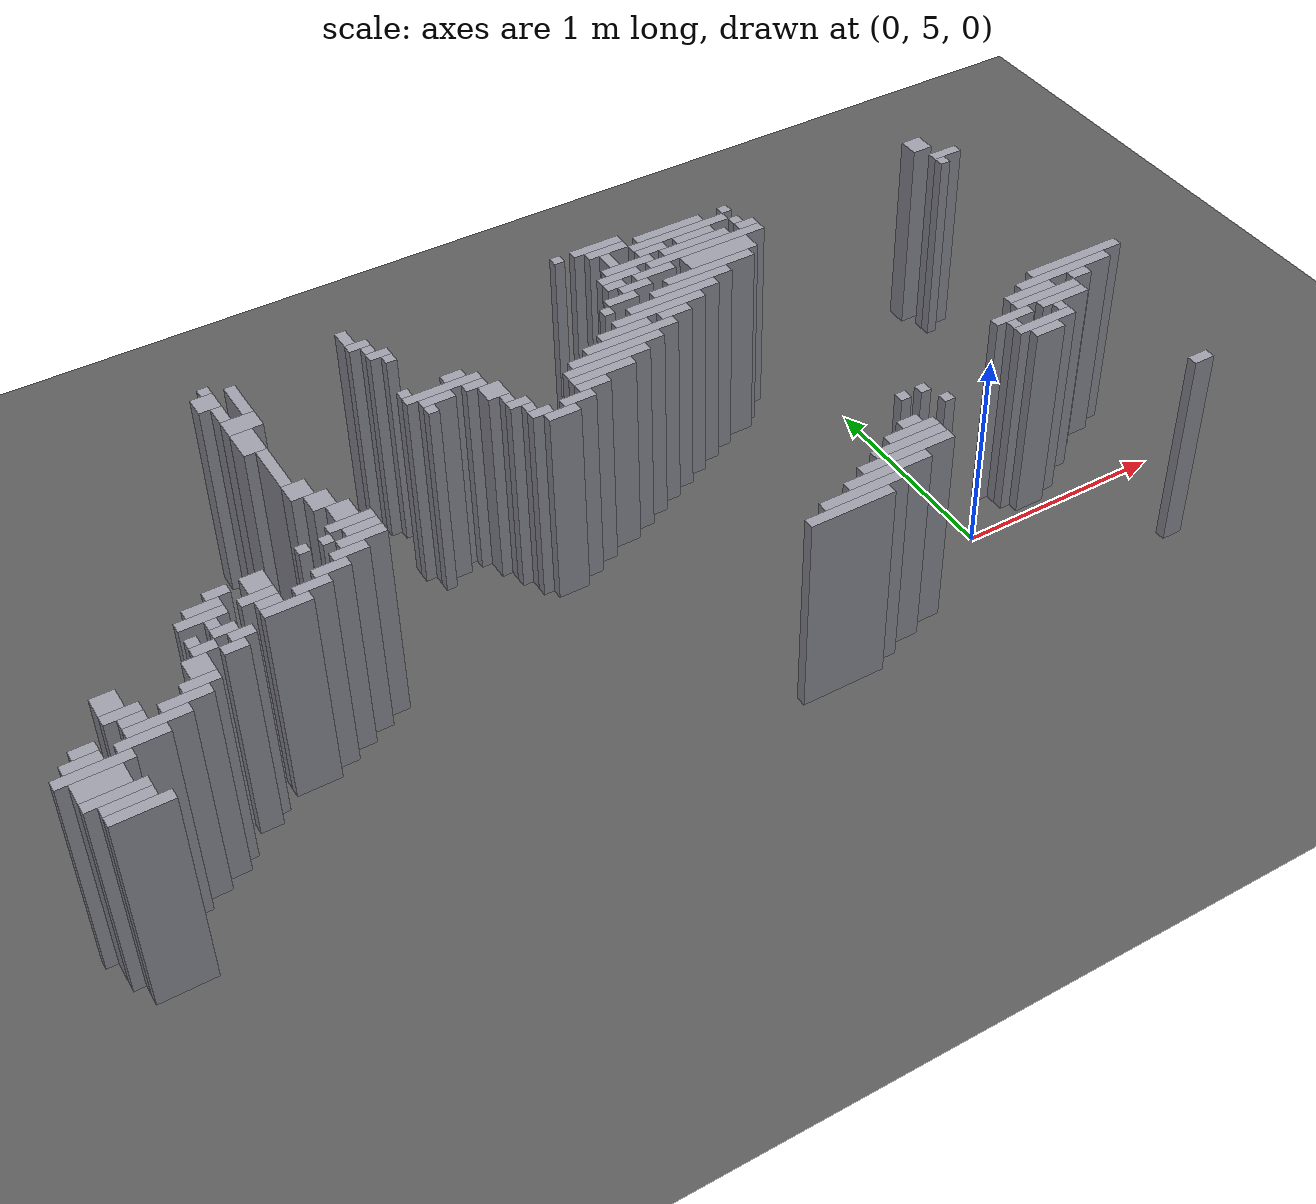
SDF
<sdf version="1.8">
 <world name="dimi">
  <model name="ground">
   <static>true</static>
   <link name="ground_link">
    <collision name="c"><geometry><plane><normal>0 0 1</normal><size>60 60</size></plane></geometry></collision>
    <visual name="v">
     <geometry><plane><normal>0 0 1</normal><size>60 60</size></plane></geometry>
     <material><ambient>0.3 0.3 0.3 1</ambient><diffuse>0.35 0.35 0.35 1</diffuse></material>
    </visual>
   </link>
  </model>
  <model name="walls">
   <static>true</static>
   <link name="wall_415">
    <pose>-2.2420 6.5950 0.5000 0 0 0</pose>
    <collision name="c"><geometry><box><size>0.0500 0.1000 1.0000</size></box></geometry></collision>
    <visual name="v">
     <geometry><box><size>0.0500 0.1000 1.0000</size></box></geometry>
     <material><ambient>0.5 0.5 0.55 1</ambient><diffuse>0.6 0.6 0.65 1</diffuse></material>
    </visual>
   </link>
   <link name="wall_416">
    <pose>-1.1920 6.6200 0.5000 0 0 0</pose>
    <collision name="c"><geometry><box><size>0.0500 0.0500 1.0000</size></box></geometry></collision>
    <visual name="v">
     <geometry><box><size>0.0500 0.0500 1.0000</size></box></geometry>
     <material><ambient>0.5 0.5 0.55 1</ambient><diffuse>0.6 0.6 0.65 1</diffuse></material>
    </visual>
   </link>
   <link name="wall_417">
    <pose>-0.9920 6.6200 0.5000 0 0 0</pose>
    <collision name="c"><geometry><box><size>0.2500 0.0500 1.0000</size></box></geometry></collision>
    <visual name="v">
     <geometry><box><size>0.2500 0.0500 1.0000</size></box></geometry>
     <material><ambient>0.5 0.5 0.55 1</ambient><diffuse>0.6 0.6 0.65 1</diffuse></material>
    </visual>
   </link>
   <link name="wall_425">
    <pose>-2.8920 6.5700 0.5000 0 0 0</pose>
    <collision name="c"><geometry><box><size>0.0500 0.0500 1.0000</size></box></geometry></collision>
    <visual name="v">
     <geometry><box><size>0.0500 0.0500 1.0000</size></box></geometry>
     <material><ambient>0.5 0.5 0.55 1</ambient><diffuse>0.6 0.6 0.65 1</diffuse></material>
    </visual>
   </link>
   <link name="wall_426">
    <pose>-0.9670 6.5700 0.5000 0 0 0</pose>
    <collision name="c"><geometry><box><size>0.2000 0.0500 1.0000</size></box></geometry></collision>
    <visual name="v">
     <geometry><box><size>0.2000 0.0500 1.0000</size></box></geometry>
     <material><ambient>0.5 0.5 0.55 1</ambient><diffuse>0.6 0.6 0.65 1</diffuse></material>
    </visual>
   </link>
   <link name="wall_427">
    <pose>-0.6420 6.5700 0.5000 0 0 0</pose>
    <collision name="c"><geometry><box><size>0.3500 0.0500 1.0000</size></box></geometry></collision>
    <visual name="v">
     <geometry><box><size>0.3500 0.0500 1.0000</size></box></geometry>
     <material><ambient>0.5 0.5 0.55 1</ambient><diffuse>0.6 0.6 0.65 1</diffuse></material>
    </visual>
   </link>
   <link name="wall_428">
    <pose>-0.3420 6.5700 0.5000 0 0 0</pose>
    <collision name="c"><geometry><box><size>0.0500 0.0500 1.0000</size></box></geometry></collision>
    <visual name="v">
     <geometry><box><size>0.0500 0.0500 1.0000</size></box></geometry>
     <material><ambient>0.5 0.5 0.55 1</ambient><diffuse>0.6 0.6 0.65 1</diffuse></material>
    </visual>
   </link>
   <link name="wall_429">
    <pose>0.7330 6.5450 0.5000 0 0 0</pose>
    <collision name="c"><geometry><box><size>0.1000 0.1000 1.0000</size></box></geometry></collision>
    <visual name="v">
     <geometry><box><size>0.1000 0.1000 1.0000</size></box></geometry>
     <material><ambient>0.5 0.5 0.55 1</ambient><diffuse>0.6 0.6 0.65 1</diffuse></material>
    </visual>
   </link>
   <link name="wall_434">
    <pose>-2.9170 6.4950 0.5000 0 0 0</pose>
    <collision name="c"><geometry><box><size>0.1000 0.1000 1.0000</size></box></geometry></collision>
    <visual name="v">
     <geometry><box><size>0.1000 0.1000 1.0000</size></box></geometry>
     <material><ambient>0.5 0.5 0.55 1</ambient><diffuse>0.6 0.6 0.65 1</diffuse></material>
    </visual>
   </link>
   <link name="wall_435">
    <pose>-2.7920 6.4450 0.5000 0 0 0</pose>
    <collision name="c"><geometry><box><size>0.0500 0.2000 1.0000</size></box></geometry></collision>
    <visual name="v">
     <geometry><box><size>0.0500 0.2000 1.0000</size></box></geometry>
     <material><ambient>0.5 0.5 0.55 1</ambient><diffuse>0.6 0.6 0.65 1</diffuse></material>
    </visual>
   </link>
   <link name="wall_436">
    <pose>-2.2170 6.5200 0.5000 0 0 0</pose>
    <collision name="c"><geometry><box><size>0.1000 0.0500 1.0000</size></box></geometry></collision>
    <visual name="v">
     <geometry><box><size>0.1000 0.0500 1.0000</size></box></geometry>
     <material><ambient>0.5 0.5 0.55 1</ambient><diffuse>0.6 0.6 0.65 1</diffuse></material>
    </visual>
   </link>
   <link name="wall_437">
    <pose>-0.9920 6.4950 0.5000 0 0 0</pose>
    <collision name="c"><geometry><box><size>0.0500 0.1000 1.0000</size></box></geometry></collision>
    <visual name="v">
     <geometry><box><size>0.0500 0.1000 1.0000</size></box></geometry>
     <material><ambient>0.5 0.5 0.55 1</ambient><diffuse>0.6 0.6 0.65 1</diffuse></material>
    </visual>
   </link>
   <link name="wall_438">
    <pose>-0.6170 6.5200 0.5000 0 0 0</pose>
    <collision name="c"><geometry><box><size>0.5000 0.0500 1.0000</size></box></geometry></collision>
    <visual name="v">
     <geometry><box><size>0.5000 0.0500 1.0000</size></box></geometry>
     <material><ambient>0.5 0.5 0.55 1</ambient><diffuse>0.6 0.6 0.65 1</diffuse></material>
    </visual>
   </link>
   <link name="wall_444">
    <pose>-2.1920 6.4700 0.5000 0 0 0</pose>
    <collision name="c"><geometry><box><size>0.0500 0.0500 1.0000</size></box></geometry></collision>
    <visual name="v">
     <geometry><box><size>0.0500 0.0500 1.0000</size></box></geometry>
     <material><ambient>0.5 0.5 0.55 1</ambient><diffuse>0.6 0.6 0.65 1</diffuse></material>
    </visual>
   </link>
   <link name="wall_445">
    <pose>-0.7920 6.4700 0.5000 0 0 0</pose>
    <collision name="c"><geometry><box><size>0.1500 0.0500 1.0000</size></box></geometry></collision>
    <visual name="v">
     <geometry><box><size>0.1500 0.0500 1.0000</size></box></geometry>
     <material><ambient>0.5 0.5 0.55 1</ambient><diffuse>0.6 0.6 0.65 1</diffuse></material>
    </visual>
   </link>
   <link name="wall_446">
    <pose>-0.5670 6.4700 0.5000 0 0 0</pose>
    <collision name="c"><geometry><box><size>0.2000 0.0500 1.0000</size></box></geometry></collision>
    <visual name="v">
     <geometry><box><size>0.2000 0.0500 1.0000</size></box></geometry>
     <material><ambient>0.5 0.5 0.55 1</ambient><diffuse>0.6 0.6 0.65 1</diffuse></material>
    </visual>
   </link>
   <link name="wall_447">
    <pose>-0.3420 6.4700 0.5000 0 0 0</pose>
    <collision name="c"><geometry><box><size>0.0500 0.0500 1.0000</size></box></geometry></collision>
    <visual name="v">
     <geometry><box><size>0.0500 0.0500 1.0000</size></box></geometry>
     <material><ambient>0.5 0.5 0.55 1</ambient><diffuse>0.6 0.6 0.65 1</diffuse></material>
    </visual>
   </link>
   <link name="wall_453">
    <pose>-2.8920 6.3950 0.5000 0 0 0</pose>
    <collision name="c"><geometry><box><size>0.0500 0.1000 1.0000</size></box></geometry></collision>
    <visual name="v">
     <geometry><box><size>0.0500 0.1000 1.0000</size></box></geometry>
     <material><ambient>0.5 0.5 0.55 1</ambient><diffuse>0.6 0.6 0.65 1</diffuse></material>
    </visual>
   </link>
   <link name="wall_454">
    <pose>-2.1670 6.4200 0.5000 0 0 0</pose>
    <collision name="c"><geometry><box><size>0.1000 0.0500 1.0000</size></box></geometry></collision>
    <visual name="v">
     <geometry><box><size>0.1000 0.0500 1.0000</size></box></geometry>
     <material><ambient>0.5 0.5 0.55 1</ambient><diffuse>0.6 0.6 0.65 1</diffuse></material>
    </visual>
   </link>
   <link name="wall_455">
    <pose>-0.9420 6.4200 0.5000 0 0 0</pose>
    <collision name="c"><geometry><box><size>0.2500 0.0500 1.0000</size></box></geometry></collision>
    <visual name="v">
     <geometry><box><size>0.2500 0.0500 1.0000</size></box></geometry>
     <material><ambient>0.5 0.5 0.55 1</ambient><diffuse>0.6 0.6 0.65 1</diffuse></material>
    </visual>
   </link>
   <link name="wall_456">
    <pose>-0.5920 6.4200 0.5000 0 0 0</pose>
    <collision name="c"><geometry><box><size>0.3500 0.0500 1.0000</size></box></geometry></collision>
    <visual name="v">
     <geometry><box><size>0.3500 0.0500 1.0000</size></box></geometry>
     <material><ambient>0.5 0.5 0.55 1</ambient><diffuse>0.6 0.6 0.65 1</diffuse></material>
    </visual>
   </link>
   <link name="wall_457">
    <pose>-0.3170 6.4200 0.5000 0 0 0</pose>
    <collision name="c"><geometry><box><size>0.1000 0.0500 1.0000</size></box></geometry></collision>
    <visual name="v">
     <geometry><box><size>0.1000 0.0500 1.0000</size></box></geometry>
     <material><ambient>0.5 0.5 0.55 1</ambient><diffuse>0.6 0.6 0.65 1</diffuse></material>
    </visual>
   </link>
   <link name="wall_458">
    <pose>0.8080 6.4200 0.5000 0 0 0</pose>
    <collision name="c"><geometry><box><size>0.1500 0.0500 1.0000</size></box></geometry></collision>
    <visual name="v">
     <geometry><box><size>0.1500 0.0500 1.0000</size></box></geometry>
     <material><ambient>0.5 0.5 0.55 1</ambient><diffuse>0.6 0.6 0.65 1</diffuse></material>
    </visual>
   </link>
   <link name="wall_464">
    <pose>-2.1420 6.3700 0.5000 0 0 0</pose>
    <collision name="c"><geometry><box><size>0.0500 0.0500 1.0000</size></box></geometry></collision>
    <visual name="v">
     <geometry><box><size>0.0500 0.0500 1.0000</size></box></geometry>
     <material><ambient>0.5 0.5 0.55 1</ambient><diffuse>0.6 0.6 0.65 1</diffuse></material>
    </visual>
   </link>
   <link name="wall_465">
    <pose>-1.0170 6.3700 0.5000 0 0 0</pose>
    <collision name="c"><geometry><box><size>0.2000 0.0500 1.0000</size></box></geometry></collision>
    <visual name="v">
     <geometry><box><size>0.2000 0.0500 1.0000</size></box></geometry>
     <material><ambient>0.5 0.5 0.55 1</ambient><diffuse>0.6 0.6 0.65 1</diffuse></material>
    </visual>
   </link>
   <link name="wall_466">
    <pose>-0.5670 6.3700 0.5000 0 0 0</pose>
    <collision name="c"><geometry><box><size>0.6000 0.0500 1.0000</size></box></geometry></collision>
    <visual name="v">
     <geometry><box><size>0.6000 0.0500 1.0000</size></box></geometry>
     <material><ambient>0.5 0.5 0.55 1</ambient><diffuse>0.6 0.6 0.65 1</diffuse></material>
    </visual>
   </link>
   <link name="wall_467">
    <pose>0.7580 6.3700 0.5000 0 0 0</pose>
    <collision name="c"><geometry><box><size>0.0500 0.0500 1.0000</size></box></geometry></collision>
    <visual name="v">
     <geometry><box><size>0.0500 0.0500 1.0000</size></box></geometry>
     <material><ambient>0.5 0.5 0.55 1</ambient><diffuse>0.6 0.6 0.65 1</diffuse></material>
    </visual>
   </link>
   <link name="wall_472">
    <pose>-2.8420 6.2950 0.5000 0 0 0</pose>
    <collision name="c"><geometry><box><size>0.1500 0.1000 1.0000</size></box></geometry></collision>
    <visual name="v">
     <geometry><box><size>0.1500 0.1000 1.0000</size></box></geometry>
     <material><ambient>0.5 0.5 0.55 1</ambient><diffuse>0.6 0.6 0.65 1</diffuse></material>
    </visual>
   </link>
   <link name="wall_473">
    <pose>-1.0670 6.3200 0.5000 0 0 0</pose>
    <collision name="c"><geometry><box><size>0.1000 0.0500 1.0000</size></box></geometry></collision>
    <visual name="v">
     <geometry><box><size>0.1000 0.0500 1.0000</size></box></geometry>
     <material><ambient>0.5 0.5 0.55 1</ambient><diffuse>0.6 0.6 0.65 1</diffuse></material>
    </visual>
   </link>
   <link name="wall_474">
    <pose>-0.8670 6.3200 0.5000 0 0 0</pose>
    <collision name="c"><geometry><box><size>0.2000 0.0500 1.0000</size></box></geometry></collision>
    <visual name="v">
     <geometry><box><size>0.2000 0.0500 1.0000</size></box></geometry>
     <material><ambient>0.5 0.5 0.55 1</ambient><diffuse>0.6 0.6 0.65 1</diffuse></material>
    </visual>
   </link>
   <link name="wall_475">
    <pose>-0.5420 6.2950 0.5000 0 0 0</pose>
    <collision name="c"><geometry><box><size>0.3500 0.1000 1.0000</size></box></geometry></collision>
    <visual name="v">
     <geometry><box><size>0.3500 0.1000 1.0000</size></box></geometry>
     <material><ambient>0.5 0.5 0.55 1</ambient><diffuse>0.6 0.6 0.65 1</diffuse></material>
    </visual>
   </link>
   <link name="wall_481">
    <pose>-0.9920 6.2700 0.5000 0 0 0</pose>
    <collision name="c"><geometry><box><size>0.1500 0.0500 1.0000</size></box></geometry></collision>
    <visual name="v">
     <geometry><box><size>0.1500 0.0500 1.0000</size></box></geometry>
     <material><ambient>0.5 0.5 0.55 1</ambient><diffuse>0.6 0.6 0.65 1</diffuse></material>
    </visual>
   </link>
   <link name="wall_486">
    <pose>-2.8670 6.1700 0.5000 0 0 0</pose>
    <collision name="c"><geometry><box><size>0.1000 0.1500 1.0000</size></box></geometry></collision>
    <visual name="v">
     <geometry><box><size>0.1000 0.1500 1.0000</size></box></geometry>
     <material><ambient>0.5 0.5 0.55 1</ambient><diffuse>0.6 0.6 0.65 1</diffuse></material>
    </visual>
   </link>
   <link name="wall_487">
    <pose>-1.0920 6.2200 0.5000 0 0 0</pose>
    <collision name="c"><geometry><box><size>0.1500 0.0500 1.0000</size></box></geometry></collision>
    <visual name="v">
     <geometry><box><size>0.1500 0.0500 1.0000</size></box></geometry>
     <material><ambient>0.5 0.5 0.55 1</ambient><diffuse>0.6 0.6 0.65 1</diffuse></material>
    </visual>
   </link>
   <link name="wall_488">
    <pose>-0.6420 6.2200 0.5000 0 0 0</pose>
    <collision name="c"><geometry><box><size>0.4500 0.0500 1.0000</size></box></geometry></collision>
    <visual name="v">
     <geometry><box><size>0.4500 0.0500 1.0000</size></box></geometry>
     <material><ambient>0.5 0.5 0.55 1</ambient><diffuse>0.6 0.6 0.65 1</diffuse></material>
    </visual>
   </link>
   <link name="wall_497">
    <pose>-1.1920 6.1700 0.5000 0 0 0</pose>
    <collision name="c"><geometry><box><size>0.0500 0.0500 1.0000</size></box></geometry></collision>
    <visual name="v">
     <geometry><box><size>0.0500 0.0500 1.0000</size></box></geometry>
     <material><ambient>0.5 0.5 0.55 1</ambient><diffuse>0.6 0.6 0.65 1</diffuse></material>
    </visual>
   </link>
   <link name="wall_498">
    <pose>-0.7670 6.1700 0.5000 0 0 0</pose>
    <collision name="c"><geometry><box><size>0.4000 0.0500 1.0000</size></box></geometry></collision>
    <visual name="v">
     <geometry><box><size>0.4000 0.0500 1.0000</size></box></geometry>
     <material><ambient>0.5 0.5 0.55 1</ambient><diffuse>0.6 0.6 0.65 1</diffuse></material>
    </visual>
   </link>
   <link name="wall_504">
    <pose>-2.1920 6.1200 0.5000 0 0 0</pose>
    <collision name="c"><geometry><box><size>0.0500 0.0500 1.0000</size></box></geometry></collision>
    <visual name="v">
     <geometry><box><size>0.0500 0.0500 1.0000</size></box></geometry>
     <material><ambient>0.5 0.5 0.55 1</ambient><diffuse>0.6 0.6 0.65 1</diffuse></material>
    </visual>
   </link>
   <link name="wall_505">
    <pose>-1.9670 6.1200 0.5000 0 0 0</pose>
    <collision name="c"><geometry><box><size>0.1000 0.0500 1.0000</size></box></geometry></collision>
    <visual name="v">
     <geometry><box><size>0.1000 0.0500 1.0000</size></box></geometry>
     <material><ambient>0.5 0.5 0.55 1</ambient><diffuse>0.6 0.6 0.65 1</diffuse></material>
    </visual>
   </link>
   <link name="wall_506">
    <pose>-0.8920 6.1200 0.5000 0 0 0</pose>
    <collision name="c"><geometry><box><size>0.4500 0.0500 1.0000</size></box></geometry></collision>
    <visual name="v">
     <geometry><box><size>0.4500 0.0500 1.0000</size></box></geometry>
     <material><ambient>0.5 0.5 0.55 1</ambient><diffuse>0.6 0.6 0.65 1</diffuse></material>
    </visual>
   </link>
   <link name="wall_510">
    <pose>-2.8420 5.9700 0.5000 0 0 0</pose>
    <collision name="c"><geometry><box><size>0.0500 0.2500 1.0000</size></box></geometry></collision>
    <visual name="v">
     <geometry><box><size>0.0500 0.2500 1.0000</size></box></geometry>
     <material><ambient>0.5 0.5 0.55 1</ambient><diffuse>0.6 0.6 0.65 1</diffuse></material>
    </visual>
   </link>
   <link name="wall_511">
    <pose>-2.0420 6.0700 0.5000 0 0 0</pose>
    <collision name="c"><geometry><box><size>0.3500 0.0500 1.0000</size></box></geometry></collision>
    <visual name="v">
     <geometry><box><size>0.3500 0.0500 1.0000</size></box></geometry>
     <material><ambient>0.5 0.5 0.55 1</ambient><diffuse>0.6 0.6 0.65 1</diffuse></material>
    </visual>
   </link>
   <link name="wall_512">
    <pose>-0.9920 6.0700 0.5000 0 0 0</pose>
    <collision name="c"><geometry><box><size>0.4500 0.0500 1.0000</size></box></geometry></collision>
    <visual name="v">
     <geometry><box><size>0.4500 0.0500 1.0000</size></box></geometry>
     <material><ambient>0.5 0.5 0.55 1</ambient><diffuse>0.6 0.6 0.65 1</diffuse></material>
    </visual>
   </link>
   <link name="wall_517">
    <pose>-2.0920 6.0200 0.5000 0 0 0</pose>
    <collision name="c"><geometry><box><size>0.1500 0.0500 1.0000</size></box></geometry></collision>
    <visual name="v">
     <geometry><box><size>0.1500 0.0500 1.0000</size></box></geometry>
     <material><ambient>0.5 0.5 0.55 1</ambient><diffuse>0.6 0.6 0.65 1</diffuse></material>
    </visual>
   </link>
   <link name="wall_518">
    <pose>-1.9170 6.0200 0.5000 0 0 0</pose>
    <collision name="c"><geometry><box><size>0.1000 0.0500 1.0000</size></box></geometry></collision>
    <visual name="v">
     <geometry><box><size>0.1000 0.0500 1.0000</size></box></geometry>
     <material><ambient>0.5 0.5 0.55 1</ambient><diffuse>0.6 0.6 0.65 1</diffuse></material>
    </visual>
   </link>
   <link name="wall_519">
    <pose>-1.1920 6.0200 0.5000 0 0 0</pose>
    <collision name="c"><geometry><box><size>0.2500 0.0500 1.0000</size></box></geometry></collision>
    <visual name="v">
     <geometry><box><size>0.2500 0.0500 1.0000</size></box></geometry>
     <material><ambient>0.5 0.5 0.55 1</ambient><diffuse>0.6 0.6 0.65 1</diffuse></material>
    </visual>
   </link>
   <link name="wall_520">
    <pose>-0.9420 6.0200 0.5000 0 0 0</pose>
    <collision name="c"><geometry><box><size>0.1500 0.0500 1.0000</size></box></geometry></collision>
    <visual name="v">
     <geometry><box><size>0.1500 0.0500 1.0000</size></box></geometry>
     <material><ambient>0.5 0.5 0.55 1</ambient><diffuse>0.6 0.6 0.65 1</diffuse></material>
    </visual>
   </link>
   <link name="wall_524">
    <pose>-2.1420 5.9700 0.5000 0 0 0</pose>
    <collision name="c"><geometry><box><size>0.0500 0.0500 1.0000</size></box></geometry></collision>
    <visual name="v">
     <geometry><box><size>0.0500 0.0500 1.0000</size></box></geometry>
     <material><ambient>0.5 0.5 0.55 1</ambient><diffuse>0.6 0.6 0.65 1</diffuse></material>
    </visual>
   </link>
   <link name="wall_525">
    <pose>-1.8670 5.9450 0.5000 0 0 0</pose>
    <collision name="c"><geometry><box><size>0.1000 0.1000 1.0000</size></box></geometry></collision>
    <visual name="v">
     <geometry><box><size>0.1000 0.1000 1.0000</size></box></geometry>
     <material><ambient>0.5 0.5 0.55 1</ambient><diffuse>0.6 0.6 0.65 1</diffuse></material>
    </visual>
   </link>
   <link name="wall_526">
    <pose>-1.1920 5.9700 0.5000 0 0 0</pose>
    <collision name="c"><geometry><box><size>0.4500 0.0500 1.0000</size></box></geometry></collision>
    <visual name="v">
     <geometry><box><size>0.4500 0.0500 1.0000</size></box></geometry>
     <material><ambient>0.5 0.5 0.55 1</ambient><diffuse>0.6 0.6 0.65 1</diffuse></material>
    </visual>
   </link>
   <link name="wall_530">
    <pose>-1.2920 5.9200 0.5000 0 0 0</pose>
    <collision name="c"><geometry><box><size>0.4500 0.0500 1.0000</size></box></geometry></collision>
    <visual name="v">
     <geometry><box><size>0.4500 0.0500 1.0000</size></box></geometry>
     <material><ambient>0.5 0.5 0.55 1</ambient><diffuse>0.6 0.6 0.65 1</diffuse></material>
    </visual>
   </link>
   <link name="wall_533">
    <pose>-1.8420 5.8700 0.5000 0 0 0</pose>
    <collision name="c"><geometry><box><size>0.0500 0.0500 1.0000</size></box></geometry></collision>
    <visual name="v">
     <geometry><box><size>0.0500 0.0500 1.0000</size></box></geometry>
     <material><ambient>0.5 0.5 0.55 1</ambient><diffuse>0.6 0.6 0.65 1</diffuse></material>
    </visual>
   </link>
   <link name="wall_534">
    <pose>-1.3670 5.8700 0.5000 0 0 0</pose>
    <collision name="c"><geometry><box><size>0.4000 0.0500 1.0000</size></box></geometry></collision>
    <visual name="v">
     <geometry><box><size>0.4000 0.0500 1.0000</size></box></geometry>
     <material><ambient>0.5 0.5 0.55 1</ambient><diffuse>0.6 0.6 0.65 1</diffuse></material>
    </visual>
   </link>
   <link name="wall_539">
    <pose>-2.8170 5.7950 0.5000 0 0 0</pose>
    <collision name="c"><geometry><box><size>0.1000 0.1000 1.0000</size></box></geometry></collision>
    <visual name="v">
     <geometry><box><size>0.1000 0.1000 1.0000</size></box></geometry>
     <material><ambient>0.5 0.5 0.55 1</ambient><diffuse>0.6 0.6 0.65 1</diffuse></material>
    </visual>
   </link>
   <link name="wall_540">
    <pose>-1.8170 5.8200 0.5000 0 0 0</pose>
    <collision name="c"><geometry><box><size>0.1000 0.0500 1.0000</size></box></geometry></collision>
    <visual name="v">
     <geometry><box><size>0.1000 0.0500 1.0000</size></box></geometry>
     <material><ambient>0.5 0.5 0.55 1</ambient><diffuse>0.6 0.6 0.65 1</diffuse></material>
    </visual>
   </link>
   <link name="wall_541">
    <pose>-1.4170 5.8200 0.5000 0 0 0</pose>
    <collision name="c"><geometry><box><size>0.3000 0.0500 1.0000</size></box></geometry></collision>
    <visual name="v">
     <geometry><box><size>0.3000 0.0500 1.0000</size></box></geometry>
     <material><ambient>0.5 0.5 0.55 1</ambient><diffuse>0.6 0.6 0.65 1</diffuse></material>
    </visual>
   </link>
   <link name="wall_546">
    <pose>-1.7920 5.7700 0.5000 0 0 0</pose>
    <collision name="c"><geometry><box><size>0.0500 0.0500 1.0000</size></box></geometry></collision>
    <visual name="v">
     <geometry><box><size>0.0500 0.0500 1.0000</size></box></geometry>
     <material><ambient>0.5 0.5 0.55 1</ambient><diffuse>0.6 0.6 0.65 1</diffuse></material>
    </visual>
   </link>
   <link name="wall_547">
    <pose>-1.4920 5.7700 0.5000 0 0 0</pose>
    <collision name="c"><geometry><box><size>0.1500 0.0500 1.0000</size></box></geometry></collision>
    <visual name="v">
     <geometry><box><size>0.1500 0.0500 1.0000</size></box></geometry>
     <material><ambient>0.5 0.5 0.55 1</ambient><diffuse>0.6 0.6 0.65 1</diffuse></material>
    </visual>
   </link>
   <link name="wall_553">
    <pose>-2.7670 5.6950 0.5000 0 0 0</pose>
    <collision name="c"><geometry><box><size>0.1000 0.1000 1.0000</size></box></geometry></collision>
    <visual name="v">
     <geometry><box><size>0.1000 0.1000 1.0000</size></box></geometry>
     <material><ambient>0.5 0.5 0.55 1</ambient><diffuse>0.6 0.6 0.65 1</diffuse></material>
    </visual>
   </link>
   <link name="wall_554">
    <pose>-1.7670 5.7200 0.5000 0 0 0</pose>
    <collision name="c"><geometry><box><size>0.1000 0.0500 1.0000</size></box></geometry></collision>
    <visual name="v">
     <geometry><box><size>0.1000 0.0500 1.0000</size></box></geometry>
     <material><ambient>0.5 0.5 0.55 1</ambient><diffuse>0.6 0.6 0.65 1</diffuse></material>
    </visual>
   </link>
   <link name="wall_555">
    <pose>-1.5920 5.7200 0.5000 0 0 0</pose>
    <collision name="c"><geometry><box><size>0.1500 0.0500 1.0000</size></box></geometry></collision>
    <visual name="v">
     <geometry><box><size>0.1500 0.0500 1.0000</size></box></geometry>
     <material><ambient>0.5 0.5 0.55 1</ambient><diffuse>0.6 0.6 0.65 1</diffuse></material>
    </visual>
   </link>
   <link name="wall_559">
    <pose>-1.6920 5.6700 0.5000 0 0 0</pose>
    <collision name="c"><geometry><box><size>0.1500 0.0500 1.0000</size></box></geometry></collision>
    <visual name="v">
     <geometry><box><size>0.1500 0.0500 1.0000</size></box></geometry>
     <material><ambient>0.5 0.5 0.55 1</ambient><diffuse>0.6 0.6 0.65 1</diffuse></material>
    </visual>
   </link>
   <link name="wall_563">
    <pose>-2.7170 5.5950 0.5000 0 0 0</pose>
    <collision name="c"><geometry><box><size>0.1000 0.1000 1.0000</size></box></geometry></collision>
    <visual name="v">
     <geometry><box><size>0.1000 0.1000 1.0000</size></box></geometry>
     <material><ambient>0.5 0.5 0.55 1</ambient><diffuse>0.6 0.6 0.65 1</diffuse></material>
    </visual>
   </link>
   <link name="wall_570">
    <pose>-2.7170 5.5200 0.5000 0 0 0</pose>
    <collision name="c"><geometry><box><size>0.2000 0.0500 1.0000</size></box></geometry></collision>
    <visual name="v">
     <geometry><box><size>0.2000 0.0500 1.0000</size></box></geometry>
     <material><ambient>0.5 0.5 0.55 1</ambient><diffuse>0.6 0.6 0.65 1</diffuse></material>
    </visual>
   </link>
   <link name="wall_577">
    <pose>-2.9420 5.4700 0.5000 0 0 0</pose>
    <collision name="c"><geometry><box><size>0.0500 0.0500 1.0000</size></box></geometry></collision>
    <visual name="v">
     <geometry><box><size>0.0500 0.0500 1.0000</size></box></geometry>
     <material><ambient>0.5 0.5 0.55 1</ambient><diffuse>0.6 0.6 0.65 1</diffuse></material>
    </visual>
   </link>
   <link name="wall_578">
    <pose>-2.8420 5.4700 0.5000 0 0 0</pose>
    <collision name="c"><geometry><box><size>0.0500 0.0500 1.0000</size></box></geometry></collision>
    <visual name="v">
     <geometry><box><size>0.0500 0.0500 1.0000</size></box></geometry>
     <material><ambient>0.5 0.5 0.55 1</ambient><diffuse>0.6 0.6 0.65 1</diffuse></material>
    </visual>
   </link>
   <link name="wall_579">
    <pose>-2.6920 5.4700 0.5000 0 0 0</pose>
    <collision name="c"><geometry><box><size>0.1500 0.0500 1.0000</size></box></geometry></collision>
    <visual name="v">
     <geometry><box><size>0.1500 0.0500 1.0000</size></box></geometry>
     <material><ambient>0.5 0.5 0.55 1</ambient><diffuse>0.6 0.6 0.65 1</diffuse></material>
    </visual>
   </link>
   <link name="wall_583">
    <pose>-3.3170 5.4200 0.5000 0 0 0</pose>
    <collision name="c"><geometry><box><size>0.1000 0.0500 1.0000</size></box></geometry></collision>
    <visual name="v">
     <geometry><box><size>0.1000 0.0500 1.0000</size></box></geometry>
     <material><ambient>0.5 0.5 0.55 1</ambient><diffuse>0.6 0.6 0.65 1</diffuse></material>
    </visual>
   </link>
   <link name="wall_584">
    <pose>-3.1670 5.3950 0.5000 0 0 0</pose>
    <collision name="c"><geometry><box><size>0.1000 0.1000 1.0000</size></box></geometry></collision>
    <visual name="v">
     <geometry><box><size>0.1000 0.1000 1.0000</size></box></geometry>
     <material><ambient>0.5 0.5 0.55 1</ambient><diffuse>0.6 0.6 0.65 1</diffuse></material>
    </visual>
   </link>
   <link name="wall_585">
    <pose>-2.7170 5.4200 0.5000 0 0 0</pose>
    <collision name="c"><geometry><box><size>0.2000 0.0500 1.0000</size></box></geometry></collision>
    <visual name="v">
     <geometry><box><size>0.2000 0.0500 1.0000</size></box></geometry>
     <material><ambient>0.5 0.5 0.55 1</ambient><diffuse>0.6 0.6 0.65 1</diffuse></material>
    </visual>
   </link>
   <link name="wall_586">
    <pose>0.7830 5.4200 0.5000 0 0 0</pose>
    <collision name="c"><geometry><box><size>0.5000 0.0500 1.0000</size></box></geometry></collision>
    <visual name="v">
     <geometry><box><size>0.5000 0.0500 1.0000</size></box></geometry>
     <material><ambient>0.5 0.5 0.55 1</ambient><diffuse>0.6 0.6 0.65 1</diffuse></material>
    </visual>
   </link>
   <link name="wall_590">
    <pose>-3.3920 5.3700 0.5000 0 0 0</pose>
    <collision name="c"><geometry><box><size>0.1500 0.0500 1.0000</size></box></geometry></collision>
    <visual name="v">
     <geometry><box><size>0.1500 0.0500 1.0000</size></box></geometry>
     <material><ambient>0.5 0.5 0.55 1</ambient><diffuse>0.6 0.6 0.65 1</diffuse></material>
    </visual>
   </link>
   <link name="wall_591">
    <pose>-2.7920 5.3700 0.5000 0 0 0</pose>
    <collision name="c"><geometry><box><size>0.1500 0.0500 1.0000</size></box></geometry></collision>
    <visual name="v">
     <geometry><box><size>0.1500 0.0500 1.0000</size></box></geometry>
     <material><ambient>0.5 0.5 0.55 1</ambient><diffuse>0.6 0.6 0.65 1</diffuse></material>
    </visual>
   </link>
   <link name="wall_592">
    <pose>0.6830 5.3700 0.5000 0 0 0</pose>
    <collision name="c"><geometry><box><size>0.5000 0.0500 1.0000</size></box></geometry></collision>
    <visual name="v">
     <geometry><box><size>0.5000 0.0500 1.0000</size></box></geometry>
     <material><ambient>0.5 0.5 0.55 1</ambient><diffuse>0.6 0.6 0.65 1</diffuse></material>
    </visual>
   </link>
   <link name="wall_596">
    <pose>-3.4170 5.3200 0.5000 0 0 0</pose>
    <collision name="c"><geometry><box><size>0.2000 0.0500 1.0000</size></box></geometry></collision>
    <visual name="v">
     <geometry><box><size>0.2000 0.0500 1.0000</size></box></geometry>
     <material><ambient>0.5 0.5 0.55 1</ambient><diffuse>0.6 0.6 0.65 1</diffuse></material>
    </visual>
   </link>
   <link name="wall_597">
    <pose>-3.1920 5.3200 0.5000 0 0 0</pose>
    <collision name="c"><geometry><box><size>0.1500 0.0500 1.0000</size></box></geometry></collision>
    <visual name="v">
     <geometry><box><size>0.1500 0.0500 1.0000</size></box></geometry>
     <material><ambient>0.5 0.5 0.55 1</ambient><diffuse>0.6 0.6 0.65 1</diffuse></material>
    </visual>
   </link>
   <link name="wall_598">
    <pose>-2.8920 5.3200 0.5000 0 0 0</pose>
    <collision name="c"><geometry><box><size>0.1500 0.0500 1.0000</size></box></geometry></collision>
    <visual name="v">
     <geometry><box><size>0.1500 0.0500 1.0000</size></box></geometry>
     <material><ambient>0.5 0.5 0.55 1</ambient><diffuse>0.6 0.6 0.65 1</diffuse></material>
    </visual>
   </link>
   <link name="wall_599">
    <pose>0.4580 5.3200 0.5000 0 0 0</pose>
    <collision name="c"><geometry><box><size>0.2500 0.0500 1.0000</size></box></geometry></collision>
    <visual name="v">
     <geometry><box><size>0.2500 0.0500 1.0000</size></box></geometry>
     <material><ambient>0.5 0.5 0.55 1</ambient><diffuse>0.6 0.6 0.65 1</diffuse></material>
    </visual>
   </link>
   <link name="wall_600">
    <pose>0.7330 5.3200 0.5000 0 0 0</pose>
    <collision name="c"><geometry><box><size>0.1000 0.0500 1.0000</size></box></geometry></collision>
    <visual name="v">
     <geometry><box><size>0.1000 0.0500 1.0000</size></box></geometry>
     <material><ambient>0.5 0.5 0.55 1</ambient><diffuse>0.6 0.6 0.65 1</diffuse></material>
    </visual>
   </link>
   <link name="wall_608">
    <pose>-3.3920 5.2700 0.5000 0 0 0</pose>
    <collision name="c"><geometry><box><size>0.0500 0.0500 1.0000</size></box></geometry></collision>
    <visual name="v">
     <geometry><box><size>0.0500 0.0500 1.0000</size></box></geometry>
     <material><ambient>0.5 0.5 0.55 1</ambient><diffuse>0.6 0.6 0.65 1</diffuse></material>
    </visual>
   </link>
   <link name="wall_609">
    <pose>-3.1670 5.2700 0.5000 0 0 0</pose>
    <collision name="c"><geometry><box><size>0.1000 0.0500 1.0000</size></box></geometry></collision>
    <visual name="v">
     <geometry><box><size>0.1000 0.0500 1.0000</size></box></geometry>
     <material><ambient>0.5 0.5 0.55 1</ambient><diffuse>0.6 0.6 0.65 1</diffuse></material>
    </visual>
   </link>
   <link name="wall_610">
    <pose>-2.9920 5.2700 0.5000 0 0 0</pose>
    <collision name="c"><geometry><box><size>0.1500 0.0500 1.0000</size></box></geometry></collision>
    <visual name="v">
     <geometry><box><size>0.1500 0.0500 1.0000</size></box></geometry>
     <material><ambient>0.5 0.5 0.55 1</ambient><diffuse>0.6 0.6 0.65 1</diffuse></material>
    </visual>
   </link>
   <link name="wall_611">
    <pose>0.5080 5.2700 0.5000 0 0 0</pose>
    <collision name="c"><geometry><box><size>0.3500 0.0500 1.0000</size></box></geometry></collision>
    <visual name="v">
     <geometry><box><size>0.3500 0.0500 1.0000</size></box></geometry>
     <material><ambient>0.5 0.5 0.55 1</ambient><diffuse>0.6 0.6 0.65 1</diffuse></material>
    </visual>
   </link>
   <link name="wall_618">
    <pose>-3.4920 5.2200 0.5000 0 0 0</pose>
    <collision name="c"><geometry><box><size>0.0500 0.0500 1.0000</size></box></geometry></collision>
    <visual name="v">
     <geometry><box><size>0.0500 0.0500 1.0000</size></box></geometry>
     <material><ambient>0.5 0.5 0.55 1</ambient><diffuse>0.6 0.6 0.65 1</diffuse></material>
    </visual>
   </link>
   <link name="wall_619">
    <pose>-3.3670 5.2200 0.5000 0 0 0</pose>
    <collision name="c"><geometry><box><size>0.1000 0.0500 1.0000</size></box></geometry></collision>
    <visual name="v">
     <geometry><box><size>0.1000 0.0500 1.0000</size></box></geometry>
     <material><ambient>0.5 0.5 0.55 1</ambient><diffuse>0.6 0.6 0.65 1</diffuse></material>
    </visual>
   </link>
   <link name="wall_620">
    <pose>-3.1170 5.2200 0.5000 0 0 0</pose>
    <collision name="c"><geometry><box><size>0.2000 0.0500 1.0000</size></box></geometry></collision>
    <visual name="v">
     <geometry><box><size>0.2000 0.0500 1.0000</size></box></geometry>
     <material><ambient>0.5 0.5 0.55 1</ambient><diffuse>0.6 0.6 0.65 1</diffuse></material>
    </visual>
   </link>
   <link name="wall_621">
    <pose>0.2830 5.2200 0.5000 0 0 0</pose>
    <collision name="c"><geometry><box><size>0.2000 0.0500 1.0000</size></box></geometry></collision>
    <visual name="v">
     <geometry><box><size>0.2000 0.0500 1.0000</size></box></geometry>
     <material><ambient>0.5 0.5 0.55 1</ambient><diffuse>0.6 0.6 0.65 1</diffuse></material>
    </visual>
   </link>
   <link name="wall_622">
    <pose>0.5580 5.2200 0.5000 0 0 0</pose>
    <collision name="c"><geometry><box><size>0.2500 0.0500 1.0000</size></box></geometry></collision>
    <visual name="v">
     <geometry><box><size>0.2500 0.0500 1.0000</size></box></geometry>
     <material><ambient>0.5 0.5 0.55 1</ambient><diffuse>0.6 0.6 0.65 1</diffuse></material>
    </visual>
   </link>
   <link name="wall_626">
    <pose>-3.4670 5.1700 0.5000 0 0 0</pose>
    <collision name="c"><geometry><box><size>0.1000 0.0500 1.0000</size></box></geometry></collision>
    <visual name="v">
     <geometry><box><size>0.1000 0.0500 1.0000</size></box></geometry>
     <material><ambient>0.5 0.5 0.55 1</ambient><diffuse>0.6 0.6 0.65 1</diffuse></material>
    </visual>
   </link>
   <link name="wall_627">
    <pose>-3.3170 5.1700 0.5000 0 0 0</pose>
    <collision name="c"><geometry><box><size>0.1000 0.0500 1.0000</size></box></geometry></collision>
    <visual name="v">
     <geometry><box><size>0.1000 0.0500 1.0000</size></box></geometry>
     <material><ambient>0.5 0.5 0.55 1</ambient><diffuse>0.6 0.6 0.65 1</diffuse></material>
    </visual>
   </link>
   <link name="wall_628">
    <pose>0.2580 5.1700 0.5000 0 0 0</pose>
    <collision name="c"><geometry><box><size>0.0500 0.0500 1.0000</size></box></geometry></collision>
    <visual name="v">
     <geometry><box><size>0.0500 0.0500 1.0000</size></box></geometry>
     <material><ambient>0.5 0.5 0.55 1</ambient><diffuse>0.6 0.6 0.65 1</diffuse></material>
    </visual>
   </link>
   <link name="wall_629">
    <pose>0.5080 5.1700 0.5000 0 0 0</pose>
    <collision name="c"><geometry><box><size>0.0500 0.0500 1.0000</size></box></geometry></collision>
    <visual name="v">
     <geometry><box><size>0.0500 0.0500 1.0000</size></box></geometry>
     <material><ambient>0.5 0.5 0.55 1</ambient><diffuse>0.6 0.6 0.65 1</diffuse></material>
    </visual>
   </link>
   <link name="wall_634">
    <pose>-3.8670 5.0950 0.5000 0 0 0</pose>
    <collision name="c"><geometry><box><size>0.1000 0.1000 1.0000</size></box></geometry></collision>
    <visual name="v">
     <geometry><box><size>0.1000 0.1000 1.0000</size></box></geometry>
     <material><ambient>0.5 0.5 0.55 1</ambient><diffuse>0.6 0.6 0.65 1</diffuse></material>
    </visual>
   </link>
   <link name="wall_635">
    <pose>-3.5170 5.0950 0.5000 0 0 0</pose>
    <collision name="c"><geometry><box><size>0.1000 0.1000 1.0000</size></box></geometry></collision>
    <visual name="v">
     <geometry><box><size>0.1000 0.1000 1.0000</size></box></geometry>
     <material><ambient>0.5 0.5 0.55 1</ambient><diffuse>0.6 0.6 0.65 1</diffuse></material>
    </visual>
   </link>
   <link name="wall_636">
    <pose>-3.3670 5.1200 0.5000 0 0 0</pose>
    <collision name="c"><geometry><box><size>0.1000 0.0500 1.0000</size></box></geometry></collision>
    <visual name="v">
     <geometry><box><size>0.1000 0.0500 1.0000</size></box></geometry>
     <material><ambient>0.5 0.5 0.55 1</ambient><diffuse>0.6 0.6 0.65 1</diffuse></material>
    </visual>
   </link>
   <link name="wall_637">
    <pose>0.3830 5.1200 0.5000 0 0 0</pose>
    <collision name="c"><geometry><box><size>0.3000 0.0500 1.0000</size></box></geometry></collision>
    <visual name="v">
     <geometry><box><size>0.3000 0.0500 1.0000</size></box></geometry>
     <material><ambient>0.5 0.5 0.55 1</ambient><diffuse>0.6 0.6 0.65 1</diffuse></material>
    </visual>
   </link>
   <link name="wall_641">
    <pose>0.3580 5.0700 0.5000 0 0 0</pose>
    <collision name="c"><geometry><box><size>0.1500 0.0500 1.0000</size></box></geometry></collision>
    <visual name="v">
     <geometry><box><size>0.1500 0.0500 1.0000</size></box></geometry>
     <material><ambient>0.5 0.5 0.55 1</ambient><diffuse>0.6 0.6 0.65 1</diffuse></material>
    </visual>
   </link>
   <link name="wall_647">
    <pose>-3.8420 5.0200 0.5000 0 0 0</pose>
    <collision name="c"><geometry><box><size>0.1500 0.0500 1.0000</size></box></geometry></collision>
    <visual name="v">
     <geometry><box><size>0.1500 0.0500 1.0000</size></box></geometry>
     <material><ambient>0.5 0.5 0.55 1</ambient><diffuse>0.6 0.6 0.65 1</diffuse></material>
    </visual>
   </link>
   <link name="wall_648">
    <pose>-3.5420 5.0200 0.5000 0 0 0</pose>
    <collision name="c"><geometry><box><size>0.1500 0.0500 1.0000</size></box></geometry></collision>
    <visual name="v">
     <geometry><box><size>0.1500 0.0500 1.0000</size></box></geometry>
     <material><ambient>0.5 0.5 0.55 1</ambient><diffuse>0.6 0.6 0.65 1</diffuse></material>
    </visual>
   </link>
   <link name="wall_649">
    <pose>-0.4420 5.0200 0.5000 0 0 0</pose>
    <collision name="c"><geometry><box><size>0.0500 0.0500 1.0000</size></box></geometry></collision>
    <visual name="v">
     <geometry><box><size>0.0500 0.0500 1.0000</size></box></geometry>
     <material><ambient>0.5 0.5 0.55 1</ambient><diffuse>0.6 0.6 0.65 1</diffuse></material>
    </visual>
   </link>
   <link name="wall_650">
    <pose>-0.3420 5.0200 0.5000 0 0 0</pose>
    <collision name="c"><geometry><box><size>0.0500 0.0500 1.0000</size></box></geometry></collision>
    <visual name="v">
     <geometry><box><size>0.0500 0.0500 1.0000</size></box></geometry>
     <material><ambient>0.5 0.5 0.55 1</ambient><diffuse>0.6 0.6 0.65 1</diffuse></material>
    </visual>
   </link>
   <link name="wall_654">
    <pose>-3.8170 4.9700 0.5000 0 0 0</pose>
    <collision name="c"><geometry><box><size>0.1000 0.0500 1.0000</size></box></geometry></collision>
    <visual name="v">
     <geometry><box><size>0.1000 0.0500 1.0000</size></box></geometry>
     <material><ambient>0.5 0.5 0.55 1</ambient><diffuse>0.6 0.6 0.65 1</diffuse></material>
    </visual>
   </link>
   <link name="wall_655">
    <pose>-3.6170 4.9700 0.5000 0 0 0</pose>
    <collision name="c"><geometry><box><size>0.2000 0.0500 1.0000</size></box></geometry></collision>
    <visual name="v">
     <geometry><box><size>0.2000 0.0500 1.0000</size></box></geometry>
     <material><ambient>0.5 0.5 0.55 1</ambient><diffuse>0.6 0.6 0.65 1</diffuse></material>
    </visual>
   </link>
   <link name="wall_660">
    <pose>-4.0170 4.9200 0.5000 0 0 0</pose>
    <collision name="c"><geometry><box><size>0.1000 0.0500 1.0000</size></box></geometry></collision>
    <visual name="v">
     <geometry><box><size>0.1000 0.0500 1.0000</size></box></geometry>
     <material><ambient>0.5 0.5 0.55 1</ambient><diffuse>0.6 0.6 0.65 1</diffuse></material>
    </visual>
   </link>
   <link name="wall_661">
    <pose>-3.7420 4.9200 0.5000 0 0 0</pose>
    <collision name="c"><geometry><box><size>0.2500 0.0500 1.0000</size></box></geometry></collision>
    <visual name="v">
     <geometry><box><size>0.2500 0.0500 1.0000</size></box></geometry>
     <material><ambient>0.5 0.5 0.55 1</ambient><diffuse>0.6 0.6 0.65 1</diffuse></material>
    </visual>
   </link>
   <link name="wall_662">
    <pose>-0.2920 4.9200 0.5000 0 0 0</pose>
    <collision name="c"><geometry><box><size>0.0500 0.0500 1.0000</size></box></geometry></collision>
    <visual name="v">
     <geometry><box><size>0.0500 0.0500 1.0000</size></box></geometry>
     <material><ambient>0.5 0.5 0.55 1</ambient><diffuse>0.6 0.6 0.65 1</diffuse></material>
    </visual>
   </link>
   <link name="wall_668">
    <pose>-4.0420 4.8700 0.5000 0 0 0</pose>
    <collision name="c"><geometry><box><size>0.1500 0.0500 1.0000</size></box></geometry></collision>
    <visual name="v">
     <geometry><box><size>0.1500 0.0500 1.0000</size></box></geometry>
     <material><ambient>0.5 0.5 0.55 1</ambient><diffuse>0.6 0.6 0.65 1</diffuse></material>
    </visual>
   </link>
   <link name="wall_669">
    <pose>-3.8170 4.8700 0.5000 0 0 0</pose>
    <collision name="c"><geometry><box><size>0.2000 0.0500 1.0000</size></box></geometry></collision>
    <visual name="v">
     <geometry><box><size>0.2000 0.0500 1.0000</size></box></geometry>
     <material><ambient>0.5 0.5 0.55 1</ambient><diffuse>0.6 0.6 0.65 1</diffuse></material>
    </visual>
   </link>
   <link name="wall_670">
    <pose>-0.5170 4.8700 0.5000 0 0 0</pose>
    <collision name="c"><geometry><box><size>0.1000 0.0500 1.0000</size></box></geometry></collision>
    <visual name="v">
     <geometry><box><size>0.1000 0.0500 1.0000</size></box></geometry>
     <material><ambient>0.5 0.5 0.55 1</ambient><diffuse>0.6 0.6 0.65 1</diffuse></material>
    </visual>
   </link>
   <link name="wall_677">
    <pose>-4.0170 4.8200 0.5000 0 0 0</pose>
    <collision name="c"><geometry><box><size>0.3000 0.0500 1.0000</size></box></geometry></collision>
    <visual name="v">
     <geometry><box><size>0.3000 0.0500 1.0000</size></box></geometry>
     <material><ambient>0.5 0.5 0.55 1</ambient><diffuse>0.6 0.6 0.65 1</diffuse></material>
    </visual>
   </link>
   <link name="wall_678">
    <pose>-0.5420 4.8200 0.5000 0 0 0</pose>
    <collision name="c"><geometry><box><size>0.2500 0.0500 1.0000</size></box></geometry></collision>
    <visual name="v">
     <geometry><box><size>0.2500 0.0500 1.0000</size></box></geometry>
     <material><ambient>0.5 0.5 0.55 1</ambient><diffuse>0.6 0.6 0.65 1</diffuse></material>
    </visual>
   </link>
   <link name="wall_684">
    <pose>-4.0170 4.7450 0.5000 0 0 0</pose>
    <collision name="c"><geometry><box><size>0.2000 0.1000 1.0000</size></box></geometry></collision>
    <visual name="v">
     <geometry><box><size>0.2000 0.1000 1.0000</size></box></geometry>
     <material><ambient>0.5 0.5 0.55 1</ambient><diffuse>0.6 0.6 0.65 1</diffuse></material>
    </visual>
   </link>
   <link name="wall_685">
    <pose>-0.5920 4.7700 0.5000 0 0 0</pose>
    <collision name="c"><geometry><box><size>0.3500 0.0500 1.0000</size></box></geometry></collision>
    <visual name="v">
     <geometry><box><size>0.3500 0.0500 1.0000</size></box></geometry>
     <material><ambient>0.5 0.5 0.55 1</ambient><diffuse>0.6 0.6 0.65 1</diffuse></material>
    </visual>
   </link>
   <link name="wall_691">
    <pose>-0.6420 4.7200 0.5000 0 0 0</pose>
    <collision name="c"><geometry><box><size>0.4500 0.0500 1.0000</size></box></geometry></collision>
    <visual name="v">
     <geometry><box><size>0.4500 0.0500 1.0000</size></box></geometry>
     <material><ambient>0.5 0.5 0.55 1</ambient><diffuse>0.6 0.6 0.65 1</diffuse></material>
    </visual>
   </link>
   <link name="wall_698">
    <pose>-3.9920 4.6700 0.5000 0 0 0</pose>
    <collision name="c"><geometry><box><size>0.2500 0.0500 1.0000</size></box></geometry></collision>
    <visual name="v">
     <geometry><box><size>0.2500 0.0500 1.0000</size></box></geometry>
     <material><ambient>0.5 0.5 0.55 1</ambient><diffuse>0.6 0.6 0.65 1</diffuse></material>
    </visual>
   </link>
   <link name="wall_699">
    <pose>-0.7670 4.6700 0.5000 0 0 0</pose>
    <collision name="c"><geometry><box><size>0.4000 0.0500 1.0000</size></box></geometry></collision>
    <visual name="v">
     <geometry><box><size>0.4000 0.0500 1.0000</size></box></geometry>
     <material><ambient>0.5 0.5 0.55 1</ambient><diffuse>0.6 0.6 0.65 1</diffuse></material>
    </visual>
   </link>
   <link name="wall_706">
    <pose>-3.9670 4.6200 0.5000 0 0 0</pose>
    <collision name="c"><geometry><box><size>0.2000 0.0500 1.0000</size></box></geometry></collision>
    <visual name="v">
     <geometry><box><size>0.2000 0.0500 1.0000</size></box></geometry>
     <material><ambient>0.5 0.5 0.55 1</ambient><diffuse>0.6 0.6 0.65 1</diffuse></material>
    </visual>
   </link>
   <link name="wall_707">
    <pose>-0.9170 4.6200 0.5000 0 0 0</pose>
    <collision name="c"><geometry><box><size>0.4000 0.0500 1.0000</size></box></geometry></collision>
    <visual name="v">
     <geometry><box><size>0.4000 0.0500 1.0000</size></box></geometry>
     <material><ambient>0.5 0.5 0.55 1</ambient><diffuse>0.6 0.6 0.65 1</diffuse></material>
    </visual>
   </link>
   <link name="wall_717">
    <pose>-3.9420 4.5700 0.5000 0 0 0</pose>
    <collision name="c"><geometry><box><size>0.2500 0.0500 1.0000</size></box></geometry></collision>
    <visual name="v">
     <geometry><box><size>0.2500 0.0500 1.0000</size></box></geometry>
     <material><ambient>0.5 0.5 0.55 1</ambient><diffuse>0.6 0.6 0.65 1</diffuse></material>
    </visual>
   </link>
   <link name="wall_718">
    <pose>-1.0170 4.5700 0.5000 0 0 0</pose>
    <collision name="c"><geometry><box><size>0.4000 0.0500 1.0000</size></box></geometry></collision>
    <visual name="v">
     <geometry><box><size>0.4000 0.0500 1.0000</size></box></geometry>
     <material><ambient>0.5 0.5 0.55 1</ambient><diffuse>0.6 0.6 0.65 1</diffuse></material>
    </visual>
   </link>
   <link name="wall_719">
    <pose>0.7830 4.5700 0.5000 0 0 0</pose>
    <collision name="c"><geometry><box><size>0.1000 0.0500 1.0000</size></box></geometry></collision>
    <visual name="v">
     <geometry><box><size>0.1000 0.0500 1.0000</size></box></geometry>
     <material><ambient>0.5 0.5 0.55 1</ambient><diffuse>0.6 0.6 0.65 1</diffuse></material>
    </visual>
   </link>
  </model>
 </world>
</sdf>
